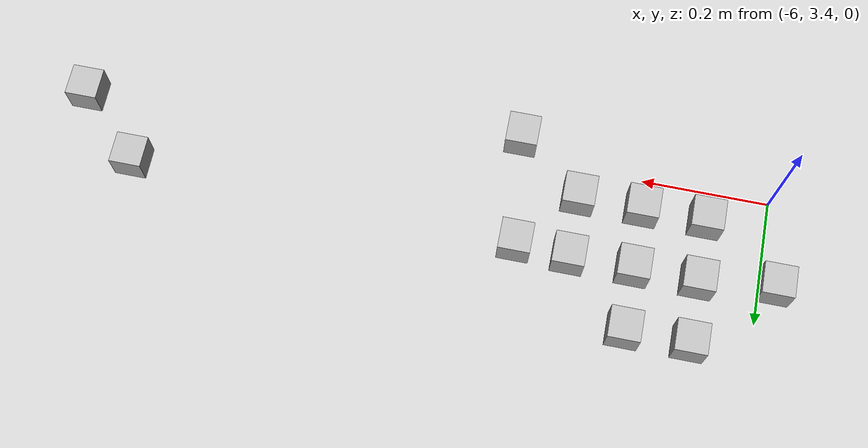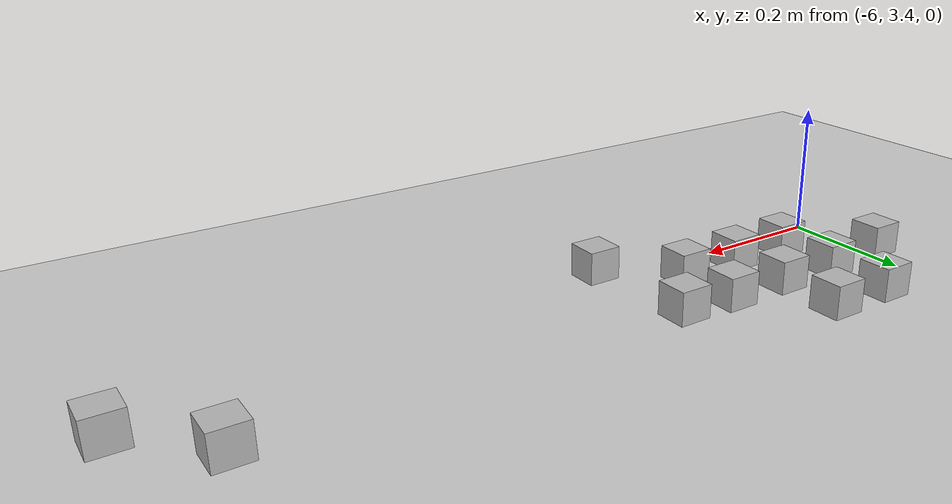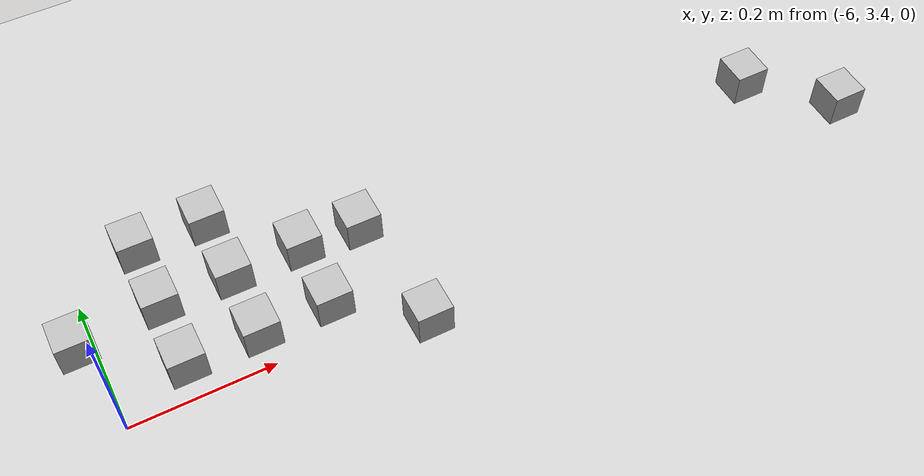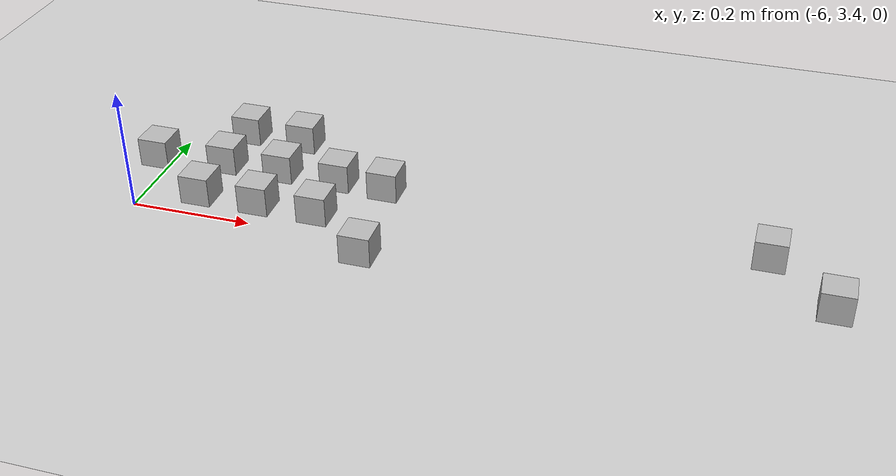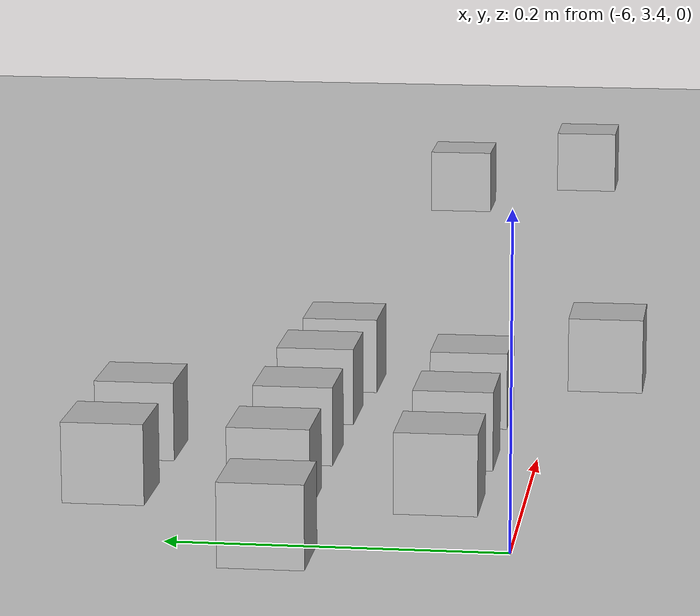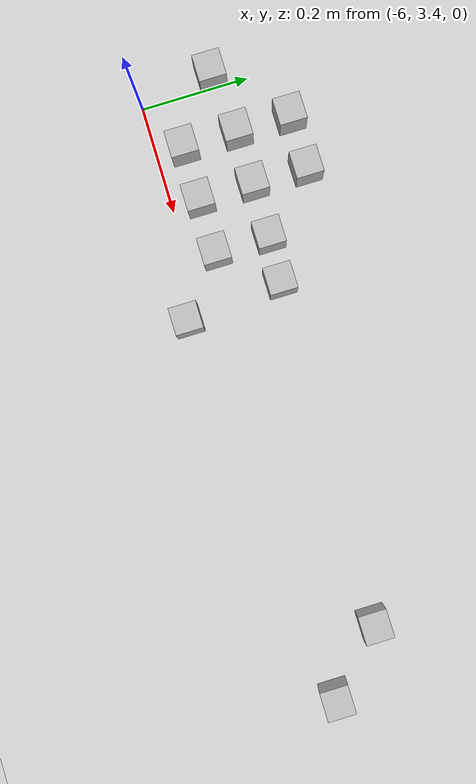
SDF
<sdf version="1.4">
 <world name="default">
  <model name="ground_plane">
   <static>1</static>
   <link name="link">
    <collision name="collision">
     <geometry><plane><normal>0 0 1</normal><size>100 100</size></plane></geometry>
     <surface><friction><ode><mu>100</mu><mu2>50</mu2></ode></friction></surface>
    </collision>
    <visual name="visual">
     <cast_shadows>0</cast_shadows>
     <geometry><plane><normal>0 0 1</normal><size>100 100</size></plane></geometry>
     <material>
      <script><uri>file://media/materials/scripts/gazebo.material</uri><name>Gazebo/Grey</name></script>
     </material>
    </visual>
    <velocity_decay><linear>0</linear><angular>0</angular></velocity_decay>
   </link>
  </model>
  <model name="at0">
   <static>0</static>
   <link name="link">
    <inertial>
     <mass>0.01</mass>
     <inertia><ixx>4e-05</ixx><ixy>0</ixy><ixz>0</ixz><iyy>4e-05</iyy><iyz>0</iyz><izz>4e-05</izz></inertia>
    </inertial>
    <visual name="visual">
     <geometry><box><size>0.05 0.05 0.05</size></box></geometry>
     <material>
      <script>
       <uri>model://at0/materials/scripts</uri>
       <uri>model://at0/materials/textures</uri>
       <name>at0/Diffuse</name>
      </script>
     </material>
    </visual>
    <collision name="collision">
     <geometry><box><size>0.05 0.05 0.05</size></box></geometry>
     <surface><friction><ode><mu>0.8</mu><mu2>0.7</mu2></ode></friction></surface>
    </collision>
    <velocity_decay><linear>0</linear><angular>0</angular></velocity_decay>
   </link>
   <pose>-6.02182 3.53657 0.025 0 -0 0</pose>
  </model>
  <model name="at8">
   <static>0</static>
   <link name="link">
    <inertial>
     <mass>0.01</mass>
     <inertia><ixx>4e-05</ixx><ixy>0</ixy><ixz>0</ixz><iyy>4e-05</iyy><iyz>0</iyz><izz>4e-05</izz></inertia>
    </inertial>
    <visual name="visual">
     <geometry><box><size>0.05 0.05 0.05</size></box></geometry>
     <material>
      <script>
       <uri>model://at0/materials/scripts</uri>
       <uri>model://at0/materials/textures</uri>
       <name>at0/Diffuse</name>
      </script>
     </material>
    </visual>
    <collision name="collision">
     <geometry><box><size>0.05 0.05 0.05</size></box></geometry>
     <surface><friction><ode><mu>0.8</mu><mu2>0.7</mu2></ode></friction></surface>
    </collision>
    <velocity_decay><linear>0</linear><angular>0</angular></velocity_decay>
   </link>
   <pose>-5.62024 3.54547 0.025 0 -0 0</pose>
  </model>
  <model name="at69">
   <static>0</static>
   <link name="link">
    <inertial>
     <mass>0.01</mass>
     <inertia><ixx>4e-05</ixx><ixy>0</ixy><ixz>0</ixz><iyy>4e-05</iyy><iyz>0</iyz><izz>4e-05</izz></inertia>
    </inertial>
    <visual name="visual">
     <geometry><box><size>0.05 0.05 0.05</size></box></geometry>
     <material>
      <script>
       <uri>model://at0/materials/scripts</uri>
       <uri>model://at0/materials/textures</uri>
       <name>at0/Diffuse</name>
      </script>
     </material>
    </visual>
    <collision name="collision">
     <geometry><box><size>0.05 0.05 0.05</size></box></geometry>
     <surface><friction><ode><mu>0.8</mu><mu2>0.7</mu2></ode></friction></surface>
    </collision>
    <velocity_decay><linear>0</linear><angular>0</angular></velocity_decay>
   </link>
   <pose>-5.6008 3.36807 0.025 0 -0 0</pose>
  </model>
  <model name="at72">
   <static>0</static>
   <link name="link">
    <inertial>
     <mass>0.01</mass>
     <inertia><ixx>4e-05</ixx><ixy>0</ixy><ixz>0</ixz><iyy>4e-05</iyy><iyz>0</iyz><izz>4e-05</izz></inertia>
    </inertial>
    <visual name="visual">
     <geometry><box><size>0.05 0.05 0.05</size></box></geometry>
     <material>
      <script>
       <uri>model://at0/materials/scripts</uri>
       <uri>model://at0/materials/textures</uri>
       <name>at0/Diffuse</name>
      </script>
     </material>
    </visual>
    <collision name="collision">
     <geometry><box><size>0.05 0.05 0.05</size></box></geometry>
     <surface><friction><ode><mu>0.8</mu><mu2>0.7</mu2></ode></friction></surface>
    </collision>
    <velocity_decay><linear>0</linear><angular>0</angular></velocity_decay>
   </link>
   <pose>-5.90443 3.45036 0.025 0 -0 0</pose>
  </model>
  <model name="at73">
   <static>0</static>
   <link name="link">
    <inertial>
     <mass>0.01</mass>
     <inertia><ixx>4e-05</ixx><ixy>0</ixy><ixz>0</ixz><iyy>4e-05</iyy><iyz>0</iyz><izz>4e-05</izz></inertia>
    </inertial>
    <visual name="visual">
     <geometry><box><size>0.05 0.05 0.05</size></box></geometry>
     <material>
      <script>
       <uri>model://at0/materials/scripts</uri>
       <uri>model://at0/materials/textures</uri>
       <name>at0/Diffuse</name>
      </script>
     </material>
    </visual>
    <collision name="collision">
     <geometry><box><size>0.05 0.05 0.05</size></box></geometry>
     <surface><friction><ode><mu>0.8</mu><mu2>0.7</mu2></ode></friction></surface>
    </collision>
    <velocity_decay><linear>0</linear><angular>0</angular></velocity_decay>
   </link>
   <pose>-5.80443 3.45036 0.025 0 -0 0</pose>
  </model>
  <model name="at74">
   <static>0</static>
   <link name="link">
    <inertial>
     <mass>0.01</mass>
     <inertia><ixx>4e-05</ixx><ixy>0</ixy><ixz>0</ixz><iyy>4e-05</iyy><iyz>0</iyz><izz>4e-05</izz></inertia>
    </inertial>
    <visual name="visual">
     <geometry><box><size>0.05 0.05 0.05</size></box></geometry>
     <material>
      <script>
       <uri>model://at0/materials/scripts</uri>
       <uri>model://at0/materials/textures</uri>
       <name>at0/Diffuse</name>
      </script>
     </material>
    </visual>
    <collision name="collision">
     <geometry><box><size>0.05 0.05 0.05</size></box></geometry>
     <surface><friction><ode><mu>0.8</mu><mu2>0.7</mu2></ode></friction></surface>
    </collision>
    <velocity_decay><linear>0</linear><angular>0</angular></velocity_decay>
   </link>
   <pose>-5.70443 3.45036 0.025 0 -0 0</pose>
  </model>
  <model name="at80">
   <static>0</static>
   <link name="link">
    <inertial>
     <mass>0.01</mass>
     <inertia><ixx>4e-05</ixx><ixy>0</ixy><ixz>0</ixz><iyy>4e-05</iyy><iyz>0</iyz><izz>4e-05</izz></inertia>
    </inertial>
    <visual name="visual">
     <geometry><box><size>0.05 0.05 0.05</size></box></geometry>
     <material>
      <script>
       <uri>model://at0/materials/scripts</uri>
       <uri>model://at0/materials/textures</uri>
       <name>at0/Diffuse</name>
      </script>
     </material>
    </visual>
    <collision name="collision">
     <geometry><box><size>0.05 0.05 0.05</size></box></geometry>
     <surface><friction><ode><mu>0.8</mu><mu2>0.7</mu2></ode></friction></surface>
    </collision>
    <velocity_decay><linear>0</linear><angular>0</angular></velocity_decay>
   </link>
   <pose>-5.90443 3.55036 0.025 0 -0 0</pose>
  </model>
  <model name="at81">
   <static>0</static>
   <link name="link">
    <inertial>
     <mass>0.01</mass>
     <inertia><ixx>4e-05</ixx><ixy>0</ixy><ixz>0</ixz><iyy>4e-05</iyy><iyz>0</iyz><izz>4e-05</izz></inertia>
    </inertial>
    <visual name="visual">
     <geometry><box><size>0.05 0.05 0.05</size></box></geometry>
     <material>
      <script>
       <uri>model://at0/materials/scripts</uri>
       <uri>model://at0/materials/textures</uri>
       <name>at0/Diffuse</name>
      </script>
     </material>
    </visual>
    <collision name="collision">
     <geometry><box><size>0.05 0.05 0.05</size></box></geometry>
     <surface><friction><ode><mu>0.8</mu><mu2>0.7</mu2></ode></friction></surface>
    </collision>
    <velocity_decay><linear>0</linear><angular>0</angular></velocity_decay>
   </link>
   <pose>-5.80443 3.55036 0.025 0 -0 0</pose>
  </model>
  <model name="at82">
   <static>0</static>
   <link name="link">
    <inertial>
     <mass>0.01</mass>
     <inertia><ixx>4e-05</ixx><ixy>0</ixy><ixz>0</ixz><iyy>4e-05</iyy><iyz>0</iyz><izz>4e-05</izz></inertia>
    </inertial>
    <visual name="visual">
     <geometry><box><size>0.05 0.05 0.05</size></box></geometry>
     <material>
      <script>
       <uri>model://at0/materials/scripts</uri>
       <uri>model://at0/materials/textures</uri>
       <name>at0/Diffuse</name>
      </script>
     </material>
    </visual>
    <collision name="collision">
     <geometry><box><size>0.05 0.05 0.05</size></box></geometry>
     <surface><friction><ode><mu>0.8</mu><mu2>0.7</mu2></ode></friction></surface>
    </collision>
    <velocity_decay><linear>0</linear><angular>0</angular></velocity_decay>
   </link>
   <pose>-5.70443 3.55036 0.025 0 -0 0</pose>
  </model>
  <model name="at88">
   <static>0</static>
   <link name="link">
    <inertial>
     <mass>0.01</mass>
     <inertia><ixx>4e-05</ixx><ixy>0</ixy><ixz>0</ixz><iyy>4e-05</iyy><iyz>0</iyz><izz>4e-05</izz></inertia>
    </inertial>
    <visual name="visual">
     <geometry><box><size>0.05 0.05 0.05</size></box></geometry>
     <material>
      <script>
       <uri>model://at0/materials/scripts</uri>
       <uri>model://at0/materials/textures</uri>
       <name>at0/Diffuse</name>
      </script>
     </material>
    </visual>
    <collision name="collision">
     <geometry><box><size>0.05 0.05 0.05</size></box></geometry>
     <surface><friction><ode><mu>0.8</mu><mu2>0.7</mu2></ode></friction></surface>
    </collision>
    <velocity_decay><linear>0</linear><angular>0</angular></velocity_decay>
   </link>
   <pose>-5.90443 3.65036 0.025 0 -0 0</pose>
  </model>
  <model name="at89">
   <static>0</static>
   <link name="link">
    <inertial>
     <mass>0.01</mass>
     <inertia><ixx>4e-05</ixx><ixy>0</ixy><ixz>0</ixz><iyy>4e-05</iyy><iyz>0</iyz><izz>4e-05</izz></inertia>
    </inertial>
    <visual name="visual">
     <geometry><box><size>0.05 0.05 0.05</size></box></geometry>
     <material>
      <script>
       <uri>model://at0/materials/scripts</uri>
       <uri>model://at0/materials/textures</uri>
       <name>at0/Diffuse</name>
      </script>
     </material>
    </visual>
    <collision name="collision">
     <geometry><box><size>0.05 0.05 0.05</size></box></geometry>
     <surface><friction><ode><mu>0.8</mu><mu2>0.7</mu2></ode></friction></surface>
    </collision>
    <velocity_decay><linear>0</linear><angular>0</angular></velocity_decay>
   </link>
   <pose>-5.80443 3.65036 0.025 0 -0 0</pose>
  </model>
  <model name="at94">
   <static>0</static>
   <link name="link">
    <inertial>
     <mass>0.01</mass>
     <inertia><ixx>4e-05</ixx><ixy>0</ixy><ixz>0</ixz><iyy>4e-05</iyy><iyz>0</iyz><izz>4e-05</izz></inertia>
    </inertial>
    <visual name="visual">
     <geometry><box><size>0.05 0.05 0.05</size></box></geometry>
     <material>
      <script>
       <uri>model://at0/materials/scripts</uri>
       <uri>model://at0/materials/textures</uri>
       <name>at0/Diffuse</name>
      </script>
     </material>
    </visual>
    <collision name="collision">
     <geometry><box><size>0.05 0.05 0.05</size></box></geometry>
     <surface><friction><ode><mu>0.8</mu><mu2>0.7</mu2></ode></friction></surface>
    </collision>
    <velocity_decay><linear>0</linear><angular>0</angular></velocity_decay>
   </link>
   <pose>-5.00245 3.5255 0.025 0 -0 0</pose>
  </model>
  <model name="at95">
   <static>0</static>
   <link name="link">
    <inertial>
     <mass>0.01</mass>
     <inertia><ixx>4e-05</ixx><ixy>0</ixy><ixz>0</ixz><iyy>4e-05</iyy><iyz>0</iyz><izz>4e-05</izz></inertia>
    </inertial>
    <visual name="visual">
     <geometry><box><size>0.05 0.05 0.05</size></box></geometry>
     <material>
      <script>
       <uri>model://at0/materials/scripts</uri>
       <uri>model://at0/materials/textures</uri>
       <name>at0/Diffuse</name>
      </script>
     </material>
    </visual>
    <collision name="collision">
     <geometry><box><size>0.05 0.05 0.05</size></box></geometry>
     <surface><friction><ode><mu>0.8</mu><mu2>0.7</mu2></ode></friction></surface>
    </collision>
    <velocity_decay><linear>0</linear><angular>0</angular></velocity_decay>
   </link>
   <pose>-4.90151 3.42619 0.025 0 -0 0</pose>
  </model>
 </world>
</sdf>
